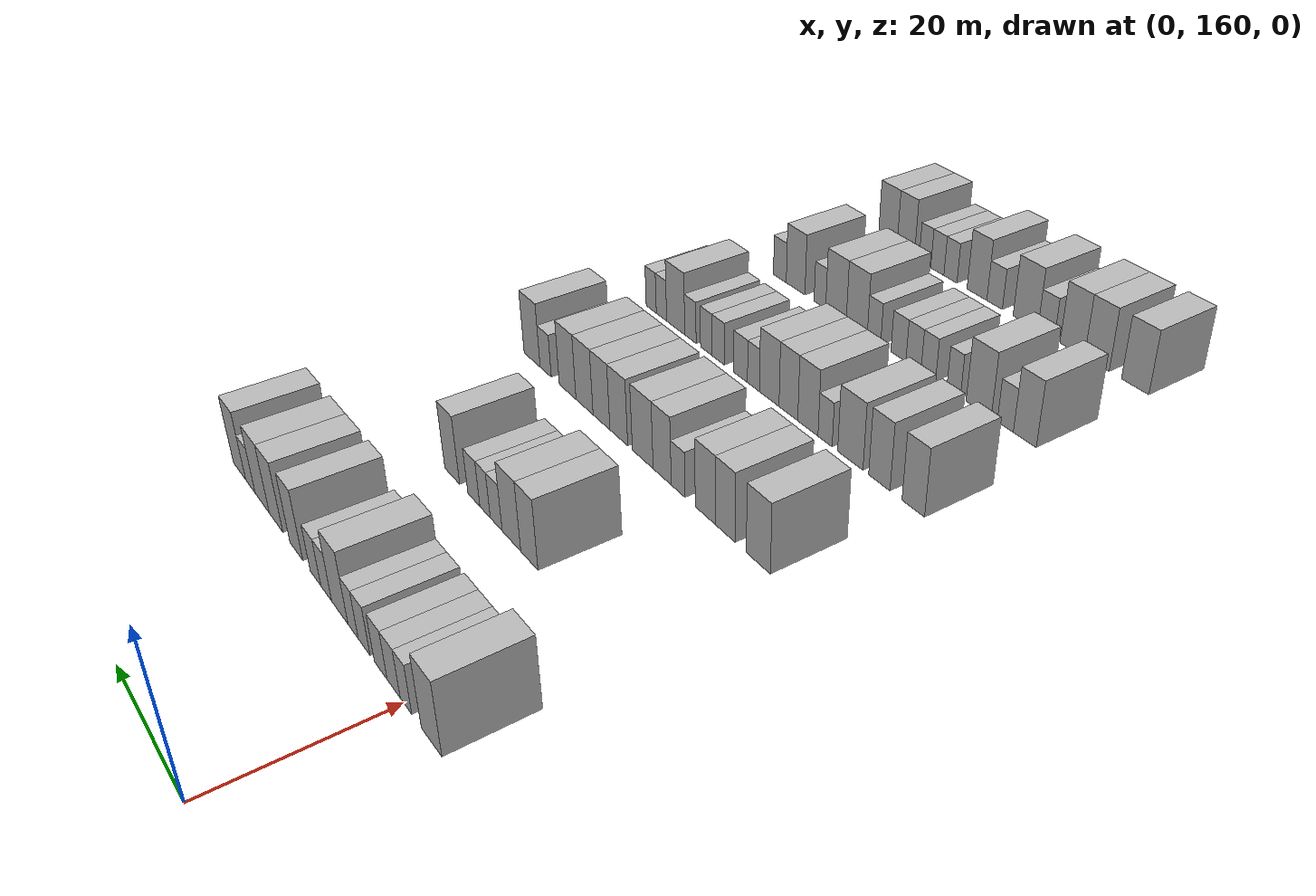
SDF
<sdf version="1.6">
 <world name="default">
  <model name="building_115">
   <static>1</static>
   <pose>25.0000 154.2615 0 0.000000 0.000000 0.000000</pose>
   <link name="link">
    <pose>0 0 4.50 0 0 0</pose>
    <collision name="collision"><geometry><box><size>10.0000 4.1730 9.0000</size></box></geometry></collision>
    <visual name="visual">
     <cast_shadows>0</cast_shadows>
     <geometry><box><size>10.0000 4.1730 9.0000</size></box></geometry>
     <material>
      <script>
       <uri>model://HANNAS_wall/materials/scripts</uri>
       <uri>model://HANNAS_wall/materials/textures</uri>
       <name>vrc/HANNAS_wall</name>
      </script>
     </material>
    </visual>
   </link>
  </model>
  <model name="building_116">
   <static>1</static>
   <pose>25.0000 159.5813 0 0.000000 0.000000 0.000000</pose>
   <link name="link">
    <pose>0 0 3.00 0 0 0</pose>
    <collision name="collision"><geometry><box><size>10.0000 2.4665 6.0000</size></box></geometry></collision>
    <visual name="visual">
     <cast_shadows>0</cast_shadows>
     <geometry><box><size>10.0000 2.4665 6.0000</size></box></geometry>
     <material>
      <script>
       <uri>model://HANNAS_wall/materials/scripts</uri>
       <uri>model://HANNAS_wall/materials/textures</uri>
       <name>vrc/HANNAS_wall</name>
      </script>
     </material>
    </visual>
   </link>
  </model>
  <model name="building_117">
   <static>1</static>
   <pose>25.0000 162.2528 0 0.000000 0.000000 0.000000</pose>
   <link name="link">
    <pose>0 0 3.00 0 0 0</pose>
    <collision name="collision"><geometry><box><size>10.0000 2.8765 6.0000</size></box></geometry></collision>
    <visual name="visual">
     <cast_shadows>0</cast_shadows>
     <geometry><box><size>10.0000 2.8765 6.0000</size></box></geometry>
     <material>
      <script>
       <uri>model://HANNAS_wall/materials/scripts</uri>
       <uri>model://HANNAS_wall/materials/textures</uri>
       <name>vrc/HANNAS_wall</name>
      </script>
     </material>
    </visual>
   </link>
  </model>
  <model name="building_118">
   <static>1</static>
   <pose>25.0000 165.1430 0 0.000000 0.000000 0.000000</pose>
   <link name="link">
    <pose>0 0 3.00 0 0 0</pose>
    <collision name="collision"><geometry><box><size>10.0000 2.9038 6.0000</size></box></geometry></collision>
    <visual name="visual">
     <cast_shadows>0</cast_shadows>
     <geometry><box><size>10.0000 2.9038 6.0000</size></box></geometry>
     <material>
      <script>
       <uri>model://HANNAS_wall/materials/scripts</uri>
       <uri>model://HANNAS_wall/materials/textures</uri>
       <name>vrc/HANNAS_wall</name>
      </script>
     </material>
    </visual>
   </link>
  </model>
  <model name="building_119">
   <static>1</static>
   <pose>25.0000 168.9858 0 0.000000 0.000000 0.000000</pose>
   <link name="link">
    <pose>0 0 3.00 0 0 0</pose>
    <collision name="collision"><geometry><box><size>10.0000 2.7819 6.0000</size></box></geometry></collision>
    <visual name="visual">
     <cast_shadows>0</cast_shadows>
     <geometry><box><size>10.0000 2.7819 6.0000</size></box></geometry>
     <material>
      <script>
       <uri>model://HANNAS_wall/materials/scripts</uri>
       <uri>model://HANNAS_wall/materials/textures</uri>
       <name>vrc/HANNAS_wall</name>
      </script>
     </material>
    </visual>
   </link>
  </model>
  <model name="building_120">
   <static>1</static>
   <pose>25.0000 171.6178 0 0.000000 0.000000 0.000000</pose>
   <link name="link">
    <pose>0 0 3.00 0 0 0</pose>
    <collision name="collision"><geometry><box><size>10.0000 2.4819 6.0000</size></box></geometry></collision>
    <visual name="visual">
     <cast_shadows>0</cast_shadows>
     <geometry><box><size>10.0000 2.4819 6.0000</size></box></geometry>
     <material>
      <script>
       <uri>model://HANNAS_wall/materials/scripts</uri>
       <uri>model://HANNAS_wall/materials/textures</uri>
       <name>vrc/HANNAS_wall</name>
      </script>
     </material>
    </visual>
   </link>
  </model>
  <model name="building_121">
   <static>1</static>
   <pose>25.0000 174.8895 0 0.000000 0.000000 0.000000</pose>
   <link name="link">
    <pose>0 0 4.50 0 0 0</pose>
    <collision name="collision"><geometry><box><size>10.0000 4.0616 9.0000</size></box></geometry></collision>
    <visual name="visual">
     <cast_shadows>0</cast_shadows>
     <geometry><box><size>10.0000 4.0616 9.0000</size></box></geometry>
     <material>
      <script>
       <uri>model://HANNAS_wall/materials/scripts</uri>
       <uri>model://HANNAS_wall/materials/textures</uri>
       <name>vrc/HANNAS_wall</name>
      </script>
     </material>
    </visual>
   </link>
  </model>
  <model name="building_122">
   <static>1</static>
   <pose>25.0000 178.3110 0 0.000000 0.000000 0.000000</pose>
   <link name="link">
    <pose>0 0 3.00 0 0 0</pose>
    <collision name="collision"><geometry><box><size>10.0000 2.7813 6.0000</size></box></geometry></collision>
    <visual name="visual">
     <cast_shadows>0</cast_shadows>
     <geometry><box><size>10.0000 2.7813 6.0000</size></box></geometry>
     <material>
      <script>
       <uri>model://HANNAS_wall/materials/scripts</uri>
       <uri>model://HANNAS_wall/materials/textures</uri>
       <name>vrc/HANNAS_wall</name>
      </script>
     </material>
    </visual>
   </link>
  </model>
  <model name="building_123">
   <static>1</static>
   <pose>25.0000 181.1276 0 0.000000 0.000000 0.000000</pose>
   <link name="link">
    <pose>0 0 3.00 0 0 0</pose>
    <collision name="collision"><geometry><box><size>10.0000 2.8518 6.0000</size></box></geometry></collision>
    <visual name="visual">
     <cast_shadows>0</cast_shadows>
     <geometry><box><size>10.0000 2.8518 6.0000</size></box></geometry>
     <material>
      <script>
       <uri>model://HANNAS_wall/materials/scripts</uri>
       <uri>model://HANNAS_wall/materials/textures</uri>
       <name>vrc/HANNAS_wall</name>
      </script>
     </material>
    </visual>
   </link>
  </model>
  <model name="building_124">
   <static>1</static>
   <pose>25.0000 186.3537 0 0.000000 0.000000 0.000000</pose>
   <link name="link">
    <pose>0 0 4.50 0 0 0</pose>
    <collision name="collision"><geometry><box><size>10.0000 3.6004 9.0000</size></box></geometry></collision>
    <visual name="visual">
     <cast_shadows>0</cast_shadows>
     <geometry><box><size>10.0000 3.6004 9.0000</size></box></geometry>
     <material>
      <script>
       <uri>model://HANNAS_wall/materials/scripts</uri>
       <uri>model://HANNAS_wall/materials/textures</uri>
       <name>vrc/HANNAS_wall</name>
      </script>
     </material>
    </visual>
   </link>
  </model>
  <model name="building_125">
   <static>1</static>
   <pose>25.0000 192.1486 0 0.000000 0.000000 0.000000</pose>
   <link name="link">
    <pose>0 0 4.50 0 0 0</pose>
    <collision name="collision"><geometry><box><size>10.0000 3.9894 9.0000</size></box></geometry></collision>
    <visual name="visual">
     <cast_shadows>0</cast_shadows>
     <geometry><box><size>10.0000 3.9894 9.0000</size></box></geometry>
     <material>
      <script>
       <uri>model://HANNAS_wall/materials/scripts</uri>
       <uri>model://HANNAS_wall/materials/textures</uri>
       <name>vrc/HANNAS_wall</name>
      </script>
     </material>
    </visual>
   </link>
  </model>
  <model name="building_126">
   <static>1</static>
   <pose>25.0000 196.2836 0 0.000000 0.000000 0.000000</pose>
   <link name="link">
    <pose>0 0 4.50 0 0 0</pose>
    <collision name="collision"><geometry><box><size>10.0000 4.2806 9.0000</size></box></geometry></collision>
    <visual name="visual">
     <cast_shadows>0</cast_shadows>
     <geometry><box><size>10.0000 4.2806 9.0000</size></box></geometry>
     <material>
      <script>
       <uri>model://HANNAS_wall/materials/scripts</uri>
       <uri>model://HANNAS_wall/materials/textures</uri>
       <name>vrc/HANNAS_wall</name>
      </script>
     </material>
    </visual>
   </link>
  </model>
  <model name="building_127">
   <static>1</static>
   <pose>25.0000 199.9079 0 0.000000 0.000000 0.000000</pose>
   <link name="link">
    <pose>0 0 3.00 0 0 0</pose>
    <collision name="collision"><geometry><box><size>10.0000 2.9679 6.0000</size></box></geometry></collision>
    <visual name="visual">
     <cast_shadows>0</cast_shadows>
     <geometry><box><size>10.0000 2.9679 6.0000</size></box></geometry>
     <material>
      <script>
       <uri>model://HANNAS_wall/materials/scripts</uri>
       <uri>model://HANNAS_wall/materials/textures</uri>
       <name>vrc/HANNAS_wall</name>
      </script>
     </material>
    </visual>
   </link>
  </model>
  <model name="building_128">
   <static>1</static>
   <pose>25.0000 203.3859 0 0.000000 0.000000 0.000000</pose>
   <link name="link">
    <pose>0 0 4.50 0 0 0</pose>
    <collision name="collision"><geometry><box><size>10.0000 3.9879 9.0000</size></box></geometry></collision>
    <visual name="visual">
     <cast_shadows>0</cast_shadows>
     <geometry><box><size>10.0000 3.9879 9.0000</size></box></geometry>
     <material>
      <script>
       <uri>model://HANNAS_wall/materials/scripts</uri>
       <uri>model://HANNAS_wall/materials/textures</uri>
       <name>vrc/HANNAS_wall</name>
      </script>
     </material>
    </visual>
   </link>
  </model>
  <model name="building_292">
   <static>1</static>
   <pose>44.0000 171.2096 0 0.000000 0.000000 0.000000</pose>
   <link name="link">
    <pose>0 0 4.50 0 0 0</pose>
    <collision name="collision"><geometry><box><size>10.0000 3.6620 9.0000</size></box></geometry></collision>
    <visual name="visual">
     <cast_shadows>0</cast_shadows>
     <geometry><box><size>10.0000 3.6620 9.0000</size></box></geometry>
     <material>
      <script>
       <uri>model://HANNAS_wall/materials/scripts</uri>
       <uri>model://HANNAS_wall/materials/textures</uri>
       <name>vrc/HANNAS_wall</name>
      </script>
     </material>
    </visual>
   </link>
  </model>
  <model name="building_293">
   <static>1</static>
   <pose>44.0000 175.0871 0 0.000000 0.000000 0.000000</pose>
   <link name="link">
    <pose>0 0 4.50 0 0 0</pose>
    <collision name="collision"><geometry><box><size>10.0000 4.0931 9.0000</size></box></geometry></collision>
    <visual name="visual">
     <cast_shadows>0</cast_shadows>
     <geometry><box><size>10.0000 4.0931 9.0000</size></box></geometry>
     <material>
      <script>
       <uri>model://HANNAS_wall/materials/scripts</uri>
       <uri>model://HANNAS_wall/materials/textures</uri>
       <name>vrc/HANNAS_wall</name>
      </script>
     </material>
    </visual>
   </link>
  </model>
  <model name="building_294">
   <static>1</static>
   <pose>44.0000 178.4927 0 0.000000 0.000000 0.000000</pose>
   <link name="link">
    <pose>0 0 3.00 0 0 0</pose>
    <collision name="collision"><geometry><box><size>10.0000 2.7181 6.0000</size></box></geometry></collision>
    <visual name="visual">
     <cast_shadows>0</cast_shadows>
     <geometry><box><size>10.0000 2.7181 6.0000</size></box></geometry>
     <material>
      <script>
       <uri>model://HANNAS_wall/materials/scripts</uri>
       <uri>model://HANNAS_wall/materials/textures</uri>
       <name>vrc/HANNAS_wall</name>
      </script>
     </material>
    </visual>
   </link>
  </model>
  <model name="building_295">
   <static>1</static>
   <pose>44.0000 181.0611 0 0.000000 0.000000 0.000000</pose>
   <link name="link">
    <pose>0 0 3.00 0 0 0</pose>
    <collision name="collision"><geometry><box><size>10.0000 2.4188 6.0000</size></box></geometry></collision>
    <visual name="visual">
     <cast_shadows>0</cast_shadows>
     <geometry><box><size>10.0000 2.4188 6.0000</size></box></geometry>
     <material>
      <script>
       <uri>model://HANNAS_wall/materials/scripts</uri>
       <uri>model://HANNAS_wall/materials/textures</uri>
       <name>vrc/HANNAS_wall</name>
      </script>
     </material>
    </visual>
   </link>
  </model>
  <model name="building_296">
   <static>1</static>
   <pose>44.0000 183.7032 0 0.000000 0.000000 0.000000</pose>
   <link name="link">
    <pose>0 0 3.00 0 0 0</pose>
    <collision name="collision"><geometry><box><size>10.0000 2.8652 6.0000</size></box></geometry></collision>
    <visual name="visual">
     <cast_shadows>0</cast_shadows>
     <geometry><box><size>10.0000 2.8652 6.0000</size></box></geometry>
     <material>
      <script>
       <uri>model://HANNAS_wall/materials/scripts</uri>
       <uri>model://HANNAS_wall/materials/textures</uri>
       <name>vrc/HANNAS_wall</name>
      </script>
     </material>
    </visual>
   </link>
  </model>
  <model name="building_297">
   <static>1</static>
   <pose>44.0000 188.9708 0 0.000000 0.000000 0.000000</pose>
   <link name="link">
    <pose>0 0 4.50 0 0 0</pose>
    <collision name="collision"><geometry><box><size>10.0000 3.6700 9.0000</size></box></geometry></collision>
    <visual name="visual">
     <cast_shadows>0</cast_shadows>
     <geometry><box><size>10.0000 3.6700 9.0000</size></box></geometry>
     <material>
      <script>
       <uri>model://HANNAS_wall/materials/scripts</uri>
       <uri>model://HANNAS_wall/materials/textures</uri>
       <name>vrc/HANNAS_wall</name>
      </script>
     </material>
    </visual>
   </link>
  </model>
  <model name="building_445">
   <static>1</static>
   <pose>63.0000 157.4556 0 0.000000 0.000000 0.000000</pose>
   <link name="link">
    <pose>0 0 4.50 0 0 0</pose>
    <collision name="collision"><geometry><box><size>10.0000 4.1712 9.0000</size></box></geometry></collision>
    <visual name="visual">
     <cast_shadows>0</cast_shadows>
     <geometry><box><size>10.0000 4.1712 9.0000</size></box></geometry>
     <material>
      <script>
       <uri>model://HANNAS_wall/materials/scripts</uri>
       <uri>model://HANNAS_wall/materials/textures</uri>
       <name>vrc/HANNAS_wall</name>
      </script>
     </material>
    </visual>
   </link>
  </model>
  <model name="building_446">
   <static>1</static>
   <pose>63.0000 163.3491 0 0.000000 0.000000 0.000000</pose>
   <link name="link">
    <pose>0 0 4.50 0 0 0</pose>
    <collision name="collision"><geometry><box><size>10.0000 3.6158 9.0000</size></box></geometry></collision>
    <visual name="visual">
     <cast_shadows>0</cast_shadows>
     <geometry><box><size>10.0000 3.6158 9.0000</size></box></geometry>
     <material>
      <script>
       <uri>model://HANNAS_wall/materials/scripts</uri>
       <uri>model://HANNAS_wall/materials/textures</uri>
       <name>vrc/HANNAS_wall</name>
      </script>
     </material>
    </visual>
   </link>
  </model>
  <model name="building_447">
   <static>1</static>
   <pose>63.0000 167.0513 0 0.000000 0.000000 0.000000</pose>
   <link name="link">
    <pose>0 0 4.50 0 0 0</pose>
    <collision name="collision"><geometry><box><size>10.0000 3.7886 9.0000</size></box></geometry></collision>
    <visual name="visual">
     <cast_shadows>0</cast_shadows>
     <geometry><box><size>10.0000 3.7886 9.0000</size></box></geometry>
     <material>
      <script>
       <uri>model://HANNAS_wall/materials/scripts</uri>
       <uri>model://HANNAS_wall/materials/textures</uri>
       <name>vrc/HANNAS_wall</name>
      </script>
     </material>
    </visual>
   </link>
  </model>
  <model name="building_448">
   <static>1</static>
   <pose>63.0000 172.3037 0 0.000000 0.000000 0.000000</pose>
   <link name="link">
    <pose>0 0 3.00 0 0 0</pose>
    <collision name="collision"><geometry><box><size>10.0000 2.7163 6.0000</size></box></geometry></collision>
    <visual name="visual">
     <cast_shadows>0</cast_shadows>
     <geometry><box><size>10.0000 2.7163 6.0000</size></box></geometry>
     <material>
      <script>
       <uri>model://HANNAS_wall/materials/scripts</uri>
       <uri>model://HANNAS_wall/materials/textures</uri>
       <name>vrc/HANNAS_wall</name>
      </script>
     </material>
    </visual>
   </link>
  </model>
  <model name="building_449">
   <static>1</static>
   <pose>63.0000 175.5100 0 0.000000 0.000000 0.000000</pose>
   <link name="link">
    <pose>0 0 4.50 0 0 0</pose>
    <collision name="collision"><geometry><box><size>10.0000 3.6963 9.0000</size></box></geometry></collision>
    <visual name="visual">
     <cast_shadows>0</cast_shadows>
     <geometry><box><size>10.0000 3.6963 9.0000</size></box></geometry>
     <material>
      <script>
       <uri>model://HANNAS_wall/materials/scripts</uri>
       <uri>model://HANNAS_wall/materials/textures</uri>
       <name>vrc/HANNAS_wall</name>
      </script>
     </material>
    </visual>
   </link>
  </model>
  <model name="building_450">
   <static>1</static>
   <pose>63.0000 179.5458 0 0.000000 0.000000 0.000000</pose>
   <link name="link">
    <pose>0 0 4.50 0 0 0</pose>
    <collision name="collision"><geometry><box><size>10.0000 4.3752 9.0000</size></box></geometry></collision>
    <visual name="visual">
     <cast_shadows>0</cast_shadows>
     <geometry><box><size>10.0000 4.3752 9.0000</size></box></geometry>
     <material>
      <script>
       <uri>model://HANNAS_wall/materials/scripts</uri>
       <uri>model://HANNAS_wall/materials/textures</uri>
       <name>vrc/HANNAS_wall</name>
      </script>
     </material>
    </visual>
   </link>
  </model>
  <model name="building_451">
   <static>1</static>
   <pose>63.0000 184.6898 0 0.000000 0.000000 0.000000</pose>
   <link name="link">
    <pose>0 0 4.50 0 0 0</pose>
    <collision name="collision"><geometry><box><size>10.0000 3.9129 9.0000</size></box></geometry></collision>
    <visual name="visual">
     <cast_shadows>0</cast_shadows>
     <geometry><box><size>10.0000 3.9129 9.0000</size></box></geometry>
     <material>
      <script>
       <uri>model://HANNAS_wall/materials/scripts</uri>
       <uri>model://HANNAS_wall/materials/textures</uri>
       <name>vrc/HANNAS_wall</name>
      </script>
     </material>
    </visual>
   </link>
  </model>
  <model name="building_452">
   <static>1</static>
   <pose>63.0000 188.5596 0 0.000000 0.000000 0.000000</pose>
   <link name="link">
    <pose>0 0 4.50 0 0 0</pose>
    <collision name="collision"><geometry><box><size>10.0000 3.8265 9.0000</size></box></geometry></collision>
    <visual name="visual">
     <cast_shadows>0</cast_shadows>
     <geometry><box><size>10.0000 3.8265 9.0000</size></box></geometry>
     <material>
      <script>
       <uri>model://HANNAS_wall/materials/scripts</uri>
       <uri>model://HANNAS_wall/materials/textures</uri>
       <name>vrc/HANNAS_wall</name>
      </script>
     </material>
    </visual>
   </link>
  </model>
  <model name="building_453">
   <static>1</static>
   <pose>63.0000 192.4776 0 0.000000 0.000000 0.000000</pose>
   <link name="link">
    <pose>0 0 4.50 0 0 0</pose>
    <collision name="collision"><geometry><box><size>10.0000 4.0095 9.0000</size></box></geometry></collision>
    <visual name="visual">
     <cast_shadows>0</cast_shadows>
     <geometry><box><size>10.0000 4.0095 9.0000</size></box></geometry>
     <material>
      <script>
       <uri>model://HANNAS_wall/materials/scripts</uri>
       <uri>model://HANNAS_wall/materials/textures</uri>
       <name>vrc/HANNAS_wall</name>
      </script>
     </material>
    </visual>
   </link>
  </model>
  <model name="building_454">
   <static>1</static>
   <pose>63.0000 196.4924 0 0.000000 0.000000 0.000000</pose>
   <link name="link">
    <pose>0 0 4.50 0 0 0</pose>
    <collision name="collision"><geometry><box><size>10.0000 4.0201 9.0000</size></box></geometry></collision>
    <visual name="visual">
     <cast_shadows>0</cast_shadows>
     <geometry><box><size>10.0000 4.0201 9.0000</size></box></geometry>
     <material>
      <script>
       <uri>model://HANNAS_wall/materials/scripts</uri>
       <uri>model://HANNAS_wall/materials/textures</uri>
       <name>vrc/HANNAS_wall</name>
      </script>
     </material>
    </visual>
   </link>
  </model>
  <model name="building_455">
   <static>1</static>
   <pose>63.0000 201.9029 0 0.000000 0.000000 0.000000</pose>
   <link name="link">
    <pose>0 0 3.00 0 0 0</pose>
    <collision name="collision"><geometry><box><size>10.0000 2.8008 6.0000</size></box></geometry></collision>
    <visual name="visual">
     <cast_shadows>0</cast_shadows>
     <geometry><box><size>10.0000 2.8008 6.0000</size></box></geometry>
     <material>
      <script>
       <uri>model://HANNAS_wall/materials/scripts</uri>
       <uri>model://HANNAS_wall/materials/textures</uri>
       <name>vrc/HANNAS_wall</name>
      </script>
     </material>
    </visual>
   </link>
  </model>
  <model name="building_456">
   <static>1</static>
   <pose>63.0000 205.3675 0 0.000000 0.000000 0.000000</pose>
   <link name="link">
    <pose>0 0 4.50 0 0 0</pose>
    <collision name="collision"><geometry><box><size>10.0000 4.1286 9.0000</size></box></geometry></collision>
    <visual name="visual">
     <cast_shadows>0</cast_shadows>
     <geometry><box><size>10.0000 4.1286 9.0000</size></box></geometry>
     <material>
      <script>
       <uri>model://HANNAS_wall/materials/scripts</uri>
       <uri>model://HANNAS_wall/materials/textures</uri>
       <name>vrc/HANNAS_wall</name>
      </script>
     </material>
    </visual>
   </link>
  </model>
  <model name="building_623">
   <static>1</static>
   <pose>82.0000 155.2384 0 0.000000 0.000000 0.000000</pose>
   <link name="link">
    <pose>0 0 4.50 0 0 0</pose>
    <collision name="collision"><geometry><box><size>10.0000 3.6609 9.0000</size></box></geometry></collision>
    <visual name="visual">
     <cast_shadows>0</cast_shadows>
     <geometry><box><size>10.0000 3.6609 9.0000</size></box></geometry>
     <material>
      <script>
       <uri>model://HANNAS_wall/materials/scripts</uri>
       <uri>model://HANNAS_wall/materials/textures</uri>
       <name>vrc/HANNAS_wall</name>
      </script>
     </material>
    </visual>
   </link>
  </model>
  <model name="building_624">
   <static>1</static>
   <pose>82.0000 160.8846 0 0.000000 0.000000 0.000000</pose>
   <link name="link">
    <pose>0 0 4.50 0 0 0</pose>
    <collision name="collision"><geometry><box><size>10.0000 3.6316 9.0000</size></box></geometry></collision>
    <visual name="visual">
     <cast_shadows>0</cast_shadows>
     <geometry><box><size>10.0000 3.6316 9.0000</size></box></geometry>
     <material>
      <script>
       <uri>model://HANNAS_wall/materials/scripts</uri>
       <uri>model://HANNAS_wall/materials/textures</uri>
       <name>vrc/HANNAS_wall</name>
      </script>
     </material>
    </visual>
   </link>
  </model>
  <model name="building_625">
   <static>1</static>
   <pose>82.0000 165.9475 0 0.000000 0.000000 0.000000</pose>
   <link name="link">
    <pose>0 0 4.50 0 0 0</pose>
    <collision name="collision"><geometry><box><size>10.0000 4.4942 9.0000</size></box></geometry></collision>
    <visual name="visual">
     <cast_shadows>0</cast_shadows>
     <geometry><box><size>10.0000 4.4942 9.0000</size></box></geometry>
     <material>
      <script>
       <uri>model://HANNAS_wall/materials/scripts</uri>
       <uri>model://HANNAS_wall/materials/textures</uri>
       <name>vrc/HANNAS_wall</name>
      </script>
     </material>
    </visual>
   </link>
  </model>
  <model name="building_626">
   <static>1</static>
   <pose>82.0000 170.5003 0 0.000000 0.000000 0.000000</pose>
   <link name="link">
    <pose>0 0 3.00 0 0 0</pose>
    <collision name="collision"><geometry><box><size>10.0000 2.6113 6.0000</size></box></geometry></collision>
    <visual name="visual">
     <cast_shadows>0</cast_shadows>
     <geometry><box><size>10.0000 2.6113 6.0000</size></box></geometry>
     <material>
      <script>
       <uri>model://HANNAS_wall/materials/scripts</uri>
       <uri>model://HANNAS_wall/materials/textures</uri>
       <name>vrc/HANNAS_wall</name>
      </script>
     </material>
    </visual>
   </link>
  </model>
  <model name="building_627">
   <static>1</static>
   <pose>82.0000 173.7292 0 0.000000 0.000000 0.000000</pose>
   <link name="link">
    <pose>0 0 4.50 0 0 0</pose>
    <collision name="collision"><geometry><box><size>10.0000 3.8465 9.0000</size></box></geometry></collision>
    <visual name="visual">
     <cast_shadows>0</cast_shadows>
     <geometry><box><size>10.0000 3.8465 9.0000</size></box></geometry>
     <material>
      <script>
       <uri>model://HANNAS_wall/materials/scripts</uri>
       <uri>model://HANNAS_wall/materials/textures</uri>
       <name>vrc/HANNAS_wall</name>
      </script>
     </material>
    </visual>
   </link>
  </model>
  <model name="building_628">
   <static>1</static>
   <pose>82.0000 177.4839 0 0.000000 0.000000 0.000000</pose>
   <link name="link">
    <pose>0 0 4.50 0 0 0</pose>
    <collision name="collision"><geometry><box><size>10.0000 3.6628 9.0000</size></box></geometry></collision>
    <visual name="visual">
     <cast_shadows>0</cast_shadows>
     <geometry><box><size>10.0000 3.6628 9.0000</size></box></geometry>
     <material>
      <script>
       <uri>model://HANNAS_wall/materials/scripts</uri>
       <uri>model://HANNAS_wall/materials/textures</uri>
       <name>vrc/HANNAS_wall</name>
      </script>
     </material>
    </visual>
   </link>
  </model>
  <model name="building_629">
   <static>1</static>
   <pose>82.0000 181.2828 0 0.000000 0.000000 0.000000</pose>
   <link name="link">
    <pose>0 0 4.50 0 0 0</pose>
    <collision name="collision"><geometry><box><size>10.0000 3.9350 9.0000</size></box></geometry></collision>
    <visual name="visual">
     <cast_shadows>0</cast_shadows>
     <geometry><box><size>10.0000 3.9350 9.0000</size></box></geometry>
     <material>
      <script>
       <uri>model://HANNAS_wall/materials/scripts</uri>
       <uri>model://HANNAS_wall/materials/textures</uri>
       <name>vrc/HANNAS_wall</name>
      </script>
     </material>
    </visual>
   </link>
  </model>
  <model name="building_630">
   <static>1</static>
   <pose>82.0000 184.4902 0 0.000000 0.000000 0.000000</pose>
   <link name="link">
    <pose>0 0 3.00 0 0 0</pose>
    <collision name="collision"><geometry><box><size>10.0000 2.4799 6.0000</size></box></geometry></collision>
    <visual name="visual">
     <cast_shadows>0</cast_shadows>
     <geometry><box><size>10.0000 2.4799 6.0000</size></box></geometry>
     <material>
      <script>
       <uri>model://HANNAS_wall/materials/scripts</uri>
       <uri>model://HANNAS_wall/materials/textures</uri>
       <name>vrc/HANNAS_wall</name>
      </script>
     </material>
    </visual>
   </link>
  </model>
  <model name="building_631">
   <static>1</static>
   <pose>82.0000 187.1847 0 0.000000 0.000000 0.000000</pose>
   <link name="link">
    <pose>0 0 3.00 0 0 0</pose>
    <collision name="collision"><geometry><box><size>10.0000 2.9091 6.0000</size></box></geometry></collision>
    <visual name="visual">
     <cast_shadows>0</cast_shadows>
     <geometry><box><size>10.0000 2.9091 6.0000</size></box></geometry>
     <material>
      <script>
       <uri>model://HANNAS_wall/materials/scripts</uri>
       <uri>model://HANNAS_wall/materials/textures</uri>
       <name>vrc/HANNAS_wall</name>
      </script>
     </material>
    </visual>
   </link>
  </model>
  <model name="building_632">
   <static>1</static>
   <pose>82.0000 192.0101 0 0.000000 0.000000 0.000000</pose>
   <link name="link">
    <pose>0 0 3.00 0 0 0</pose>
    <collision name="collision"><geometry><box><size>10.0000 2.7419 6.0000</size></box></geometry></collision>
    <visual name="visual">
     <cast_shadows>0</cast_shadows>
     <geometry><box><size>10.0000 2.7419 6.0000</size></box></geometry>
     <material>
      <script>
       <uri>model://HANNAS_wall/materials/scripts</uri>
       <uri>model://HANNAS_wall/materials/textures</uri>
       <name>vrc/HANNAS_wall</name>
      </script>
     </material>
    </visual>
   </link>
  </model>
  <model name="building_633">
   <static>1</static>
   <pose>82.0000 194.6394 0 0.000000 0.000000 0.000000</pose>
   <link name="link">
    <pose>0 0 3.00 0 0 0</pose>
    <collision name="collision"><geometry><box><size>10.0000 2.5166 6.0000</size></box></geometry></collision>
    <visual name="visual">
     <cast_shadows>0</cast_shadows>
     <geometry><box><size>10.0000 2.5166 6.0000</size></box></geometry>
     <material>
      <script>
       <uri>model://HANNAS_wall/materials/scripts</uri>
       <uri>model://HANNAS_wall/materials/textures</uri>
       <name>vrc/HANNAS_wall</name>
      </script>
     </material>
    </visual>
   </link>
  </model>
  <model name="building_634">
   <static>1</static>
   <pose>82.0000 198.1976 0 0.000000 0.000000 0.000000</pose>
   <link name="link">
    <pose>0 0 3.00 0 0 0</pose>
    <collision name="collision"><geometry><box><size>10.0000 2.5997 6.0000</size></box></geometry></collision>
    <visual name="visual">
     <cast_shadows>0</cast_shadows>
     <geometry><box><size>10.0000 2.5997 6.0000</size></box></geometry>
     <material>
      <script>
       <uri>model://HANNAS_wall/materials/scripts</uri>
       <uri>model://HANNAS_wall/materials/textures</uri>
       <name>vrc/HANNAS_wall</name>
      </script>
     </material>
    </visual>
   </link>
  </model>
  <model name="building_635">
   <static>1</static>
   <pose>82.0000 201.6266 0 0.000000 0.000000 0.000000</pose>
   <link name="link">
    <pose>0 0 4.50 0 0 0</pose>
    <collision name="collision"><geometry><box><size>10.0000 4.2584 9.0000</size></box></geometry></collision>
    <visual name="visual">
     <cast_shadows>0</cast_shadows>
     <geometry><box><size>10.0000 4.2584 9.0000</size></box></geometry>
     <material>
      <script>
       <uri>model://HANNAS_wall/materials/scripts</uri>
       <uri>model://HANNAS_wall/materials/textures</uri>
       <name>vrc/HANNAS_wall</name>
      </script>
     </material>
    </visual>
   </link>
  </model>
  <model name="building_636">
   <static>1</static>
   <pose>82.0000 205.0024 0 0.000000 0.000000 0.000000</pose>
   <link name="link">
    <pose>0 0 3.00 0 0 0</pose>
    <collision name="collision"><geometry><box><size>10.0000 2.4931 6.0000</size></box></geometry></collision>
    <visual name="visual">
     <cast_shadows>0</cast_shadows>
     <geometry><box><size>10.0000 2.4931 6.0000</size></box></geometry>
     <material>
      <script>
       <uri>model://HANNAS_wall/materials/scripts</uri>
       <uri>model://HANNAS_wall/materials/textures</uri>
       <name>vrc/HANNAS_wall</name>
      </script>
     </material>
    </visual>
   </link>
  </model>
  <model name="building_637">
   <static>1</static>
   <pose>82.0000 207.4839 0 0.000000 0.000000 0.000000</pose>
   <link name="link">
    <pose>0 0 3.00 0 0 0</pose>
    <collision name="collision"><geometry><box><size>10.0000 2.4699 6.0000</size></box></geometry></collision>
    <visual name="visual">
     <cast_shadows>0</cast_shadows>
     <geometry><box><size>10.0000 2.4699 6.0000</size></box></geometry>
     <material>
      <script>
       <uri>model://HANNAS_wall/materials/scripts</uri>
       <uri>model://HANNAS_wall/materials/textures</uri>
       <name>vrc/HANNAS_wall</name>
      </script>
     </material>
    </visual>
   </link>
  </model>
  <model name="building_799">
   <static>1</static>
   <pose>101.0000 157.5948 0 0.000000 0.000000 0.000000</pose>
   <link name="link">
    <pose>0 0 4.50 0 0 0</pose>
    <collision name="collision"><geometry><box><size>10.0000 3.6920 9.0000</size></box></geometry></collision>
    <visual name="visual">
     <cast_shadows>0</cast_shadows>
     <geometry><box><size>10.0000 3.6920 9.0000</size></box></geometry>
     <material>
      <script>
       <uri>model://HANNAS_wall/materials/scripts</uri>
       <uri>model://HANNAS_wall/materials/textures</uri>
       <name>vrc/HANNAS_wall</name>
      </script>
     </material>
    </visual>
   </link>
  </model>
  <model name="building_800">
   <static>1</static>
   <pose>101.0000 160.7679 0 0.000000 0.000000 0.000000</pose>
   <link name="link">
    <pose>0 0 3.00 0 0 0</pose>
    <collision name="collision"><geometry><box><size>10.0000 2.6541 6.0000</size></box></geometry></collision>
    <visual name="visual">
     <cast_shadows>0</cast_shadows>
     <geometry><box><size>10.0000 2.6541 6.0000</size></box></geometry>
     <material>
      <script>
       <uri>model://HANNAS_wall/materials/scripts</uri>
       <uri>model://HANNAS_wall/materials/textures</uri>
       <name>vrc/HANNAS_wall</name>
      </script>
     </material>
    </visual>
   </link>
  </model>
  <model name="building_801">
   <static>1</static>
   <pose>101.0000 165.2416 0 0.000000 0.000000 0.000000</pose>
   <link name="link">
    <pose>0 0 4.50 0 0 0</pose>
    <collision name="collision"><geometry><box><size>10.0000 4.2933 9.0000</size></box></geometry></collision>
    <visual name="visual">
     <cast_shadows>0</cast_shadows>
     <geometry><box><size>10.0000 4.2933 9.0000</size></box></geometry>
     <material>
      <script>
       <uri>model://HANNAS_wall/materials/scripts</uri>
       <uri>model://HANNAS_wall/materials/textures</uri>
       <name>vrc/HANNAS_wall</name>
      </script>
     </material>
    </visual>
   </link>
  </model>
  <model name="building_802">
   <static>1</static>
   <pose>101.0000 169.5949 0 0.000000 0.000000 0.000000</pose>
   <link name="link">
    <pose>0 0 3.00 0 0 0</pose>
    <collision name="collision"><geometry><box><size>10.0000 2.4132 6.0000</size></box></geometry></collision>
    <visual name="visual">
     <cast_shadows>0</cast_shadows>
     <geometry><box><size>10.0000 2.4132 6.0000</size></box></geometry>
     <material>
      <script>
       <uri>model://HANNAS_wall/materials/scripts</uri>
       <uri>model://HANNAS_wall/materials/textures</uri>
       <name>vrc/HANNAS_wall</name>
      </script>
     </material>
    </visual>
   </link>
  </model>
  <model name="building_803">
   <static>1</static>
   <pose>101.0000 174.1433 0 0.000000 0.000000 0.000000</pose>
   <link name="link">
    <pose>0 0 3.00 0 0 0</pose>
    <collision name="collision"><geometry><box><size>10.0000 2.6836 6.0000</size></box></geometry></collision>
    <visual name="visual">
     <cast_shadows>0</cast_shadows>
     <geometry><box><size>10.0000 2.6836 6.0000</size></box></geometry>
     <material>
      <script>
       <uri>model://HANNAS_wall/materials/scripts</uri>
       <uri>model://HANNAS_wall/materials/textures</uri>
       <name>vrc/HANNAS_wall</name>
      </script>
     </material>
    </visual>
   </link>
  </model>
  <model name="building_804">
   <static>1</static>
   <pose>101.0000 176.8945 0 0.000000 0.000000 0.000000</pose>
   <link name="link">
    <pose>0 0 3.00 0 0 0</pose>
    <collision name="collision"><geometry><box><size>10.0000 2.8189 6.0000</size></box></geometry></collision>
    <visual name="visual">
     <cast_shadows>0</cast_shadows>
     <geometry><box><size>10.0000 2.8189 6.0000</size></box></geometry>
     <material>
      <script>
       <uri>model://HANNAS_wall/materials/scripts</uri>
       <uri>model://HANNAS_wall/materials/textures</uri>
       <name>vrc/HANNAS_wall</name>
      </script>
     </material>
    </visual>
   </link>
  </model>
  <model name="building_805">
   <static>1</static>
   <pose>101.0000 179.7383 0 0.000000 0.000000 0.000000</pose>
   <link name="link">
    <pose>0 0 3.00 0 0 0</pose>
    <collision name="collision"><geometry><box><size>10.0000 2.8689 6.0000</size></box></geometry></collision>
    <visual name="visual">
     <cast_shadows>0</cast_shadows>
     <geometry><box><size>10.0000 2.8689 6.0000</size></box></geometry>
     <material>
      <script>
       <uri>model://HANNAS_wall/materials/scripts</uri>
       <uri>model://HANNAS_wall/materials/textures</uri>
       <name>vrc/HANNAS_wall</name>
      </script>
     </material>
    </visual>
   </link>
  </model>
  <model name="building_806">
   <static>1</static>
   <pose>101.0000 184.5046 0 0.000000 0.000000 0.000000</pose>
   <link name="link">
    <pose>0 0 3.00 0 0 0</pose>
    <collision name="collision"><geometry><box><size>10.0000 2.6637 6.0000</size></box></geometry></collision>
    <visual name="visual">
     <cast_shadows>0</cast_shadows>
     <geometry><box><size>10.0000 2.6637 6.0000</size></box></geometry>
     <material>
      <script>
       <uri>model://HANNAS_wall/materials/scripts</uri>
       <uri>model://HANNAS_wall/materials/textures</uri>
       <name>vrc/HANNAS_wall</name>
      </script>
     </material>
    </visual>
   </link>
  </model>
  <model name="building_807">
   <static>1</static>
   <pose>101.0000 187.9706 0 0.000000 0.000000 0.000000</pose>
   <link name="link">
    <pose>0 0 4.50 0 0 0</pose>
    <collision name="collision"><geometry><box><size>10.0000 4.2682 9.0000</size></box></geometry></collision>
    <visual name="visual">
     <cast_shadows>0</cast_shadows>
     <geometry><box><size>10.0000 4.2682 9.0000</size></box></geometry>
     <material>
      <script>
       <uri>model://HANNAS_wall/materials/scripts</uri>
       <uri>model://HANNAS_wall/materials/textures</uri>
       <name>vrc/HANNAS_wall</name>
      </script>
     </material>
    </visual>
   </link>
  </model>
  <model name="building_808">
   <static>1</static>
   <pose>101.0000 192.2582 0 0.000000 0.000000 0.000000</pose>
   <link name="link">
    <pose>0 0 4.50 0 0 0</pose>
    <collision name="collision"><geometry><box><size>10.0000 4.3071 9.0000</size></box></geometry></collision>
    <visual name="visual">
     <cast_shadows>0</cast_shadows>
     <geometry><box><size>10.0000 4.3071 9.0000</size></box></geometry>
     <material>
      <script>
       <uri>model://HANNAS_wall/materials/scripts</uri>
       <uri>model://HANNAS_wall/materials/textures</uri>
       <name>vrc/HANNAS_wall</name>
      </script>
     </material>
    </visual>
   </link>
  </model>
  <model name="building_809">
   <static>1</static>
   <pose>101.0000 195.6526 0 0.000000 0.000000 0.000000</pose>
   <link name="link">
    <pose>0 0 3.00 0 0 0</pose>
    <collision name="collision"><geometry><box><size>10.0000 2.4817 6.0000</size></box></geometry></collision>
    <visual name="visual">
     <cast_shadows>0</cast_shadows>
     <geometry><box><size>10.0000 2.4817 6.0000</size></box></geometry>
     <material>
      <script>
       <uri>model://HANNAS_wall/materials/scripts</uri>
       <uri>model://HANNAS_wall/materials/textures</uri>
       <name>vrc/HANNAS_wall</name>
      </script>
     </material>
    </visual>
   </link>
  </model>
  <model name="building_810">
   <static>1</static>
   <pose>101.0000 200.9760 0 0.000000 0.000000 0.000000</pose>
   <link name="link">
    <pose>0 0 4.50 0 0 0</pose>
    <collision name="collision"><geometry><box><size>10.0000 4.1651 9.0000</size></box></geometry></collision>
    <visual name="visual">
     <cast_shadows>0</cast_shadows>
     <geometry><box><size>10.0000 4.1651 9.0000</size></box></geometry>
     <material>
      <script>
       <uri>model://HANNAS_wall/materials/scripts</uri>
       <uri>model://HANNAS_wall/materials/textures</uri>
       <name>vrc/HANNAS_wall</name>
      </script>
     </material>
    </visual>
   </link>
  </model>
  <model name="building_811">
   <static>1</static>
   <pose>101.0000 204.5155 0 0.000000 0.000000 0.000000</pose>
   <link name="link">
    <pose>0 0 3.00 0 0 0</pose>
    <collision name="collision"><geometry><box><size>10.0000 2.9141 6.0000</size></box></geometry></collision>
    <visual name="visual">
     <cast_shadows>0</cast_shadows>
     <geometry><box><size>10.0000 2.9141 6.0000</size></box></geometry>
     <material>
      <script>
       <uri>model://HANNAS_wall/materials/scripts</uri>
       <uri>model://HANNAS_wall/materials/textures</uri>
       <name>vrc/HANNAS_wall</name>
      </script>
     </material>
    </visual>
   </link>
  </model>
  <model name="building_963">
   <static>1</static>
   <pose>120.0000 157.9830 0 0.000000 0.000000 0.000000</pose>
   <link name="link">
    <pose>0 0 4.50 0 0 0</pose>
    <collision name="collision"><geometry><box><size>10.0000 4.3432 9.0000</size></box></geometry></collision>
    <visual name="visual">
     <cast_shadows>0</cast_shadows>
     <geometry><box><size>10.0000 4.3432 9.0000</size></box></geometry>
     <material>
      <script>
       <uri>model://HANNAS_wall/materials/scripts</uri>
       <uri>model://HANNAS_wall/materials/textures</uri>
       <name>vrc/HANNAS_wall</name>
      </script>
     </material>
    </visual>
   </link>
  </model>
  <model name="building_964">
   <static>1</static>
   <pose>120.0000 164.2002 0 0.000000 0.000000 0.000000</pose>
   <link name="link">
    <pose>0 0 4.50 0 0 0</pose>
    <collision name="collision"><geometry><box><size>10.0000 4.0913 9.0000</size></box></geometry></collision>
    <visual name="visual">
     <cast_shadows>0</cast_shadows>
     <geometry><box><size>10.0000 4.0913 9.0000</size></box></geometry>
     <material>
      <script>
       <uri>model://HANNAS_wall/materials/scripts</uri>
       <uri>model://HANNAS_wall/materials/textures</uri>
       <name>vrc/HANNAS_wall</name>
      </script>
     </material>
    </visual>
   </link>
  </model>
  <model name="building_965">
   <static>1</static>
   <pose>120.0000 168.3433 0 0.000000 0.000000 0.000000</pose>
   <link name="link">
    <pose>0 0 4.50 0 0 0</pose>
    <collision name="collision"><geometry><box><size>10.0000 4.1948 9.0000</size></box></geometry></collision>
    <visual name="visual">
     <cast_shadows>0</cast_shadows>
     <geometry><box><size>10.0000 4.1948 9.0000</size></box></geometry>
     <material>
      <script>
       <uri>model://HANNAS_wall/materials/scripts</uri>
       <uri>model://HANNAS_wall/materials/textures</uri>
       <name>vrc/HANNAS_wall</name>
      </script>
     </material>
    </visual>
   </link>
  </model>
  <model name="building_966">
   <static>1</static>
   <pose>120.0000 172.9044 0 0.000000 0.000000 0.000000</pose>
   <link name="link">
    <pose>0 0 3.00 0 0 0</pose>
    <collision name="collision"><geometry><box><size>10.0000 2.9275 6.0000</size></box></geometry></collision>
    <visual name="visual">
     <cast_shadows>0</cast_shadows>
     <geometry><box><size>10.0000 2.9275 6.0000</size></box></geometry>
     <material>
      <script>
       <uri>model://HANNAS_wall/materials/scripts</uri>
       <uri>model://HANNAS_wall/materials/textures</uri>
       <name>vrc/HANNAS_wall</name>
      </script>
     </material>
    </visual>
   </link>
  </model>
  <model name="building_967">
   <static>1</static>
   <pose>120.0000 176.6064 0 0.000000 0.000000 0.000000</pose>
   <link name="link">
    <pose>0 0 4.50 0 0 0</pose>
    <collision name="collision"><geometry><box><size>10.0000 4.4765 9.0000</size></box></geometry></collision>
    <visual name="visual">
     <cast_shadows>0</cast_shadows>
     <geometry><box><size>10.0000 4.4765 9.0000</size></box></geometry>
     <material>
      <script>
       <uri>model://HANNAS_wall/materials/scripts</uri>
       <uri>model://HANNAS_wall/materials/textures</uri>
       <name>vrc/HANNAS_wall</name>
      </script>
     </material>
    </visual>
   </link>
  </model>
  <model name="building_968">
   <static>1</static>
   <pose>120.0000 182.3183 0 0.000000 0.000000 0.000000</pose>
   <link name="link">
    <pose>0 0 3.00 0 0 0</pose>
    <collision name="collision"><geometry><box><size>10.0000 2.9474 6.0000</size></box></geometry></collision>
    <visual name="visual">
     <cast_shadows>0</cast_shadows>
     <geometry><box><size>10.0000 2.9474 6.0000</size></box></geometry>
     <material>
      <script>
       <uri>model://HANNAS_wall/materials/scripts</uri>
       <uri>model://HANNAS_wall/materials/textures</uri>
       <name>vrc/HANNAS_wall</name>
      </script>
     </material>
    </visual>
   </link>
  </model>
  <model name="building_969">
   <static>1</static>
   <pose>120.0000 185.7115 0 0.000000 0.000000 0.000000</pose>
   <link name="link">
    <pose>0 0 4.50 0 0 0</pose>
    <collision name="collision"><geometry><box><size>10.0000 3.8390 9.0000</size></box></geometry></collision>
    <visual name="visual">
     <cast_shadows>0</cast_shadows>
     <geometry><box><size>10.0000 3.8390 9.0000</size></box></geometry>
     <material>
      <script>
       <uri>model://HANNAS_wall/materials/scripts</uri>
       <uri>model://HANNAS_wall/materials/textures</uri>
       <name>vrc/HANNAS_wall</name>
      </script>
     </material>
    </visual>
   </link>
  </model>
  <model name="building_970">
   <static>1</static>
   <pose>120.0000 190.9447 0 0.000000 0.000000 0.000000</pose>
   <link name="link">
    <pose>0 0 3.00 0 0 0</pose>
    <collision name="collision"><geometry><box><size>10.0000 2.6273 6.0000</size></box></geometry></collision>
    <visual name="visual">
     <cast_shadows>0</cast_shadows>
     <geometry><box><size>10.0000 2.6273 6.0000</size></box></geometry>
     <material>
      <script>
       <uri>model://HANNAS_wall/materials/scripts</uri>
       <uri>model://HANNAS_wall/materials/textures</uri>
       <name>vrc/HANNAS_wall</name>
      </script>
     </material>
    </visual>
   </link>
  </model>
  <model name="building_971">
   <static>1</static>
   <pose>120.0000 193.6059 0 0.000000 0.000000 0.000000</pose>
   <link name="link">
    <pose>0 0 3.00 0 0 0</pose>
    <collision name="collision"><geometry><box><size>10.0000 2.6952 6.0000</size></box></geometry></collision>
    <visual name="visual">
     <cast_shadows>0</cast_shadows>
     <geometry><box><size>10.0000 2.6952 6.0000</size></box></geometry>
     <material>
      <script>
       <uri>model://HANNAS_wall/materials/scripts</uri>
       <uri>model://HANNAS_wall/materials/textures</uri>
       <name>vrc/HANNAS_wall</name>
      </script>
     </material>
    </visual>
   </link>
  </model>
  <model name="building_972">
   <static>1</static>
   <pose>120.0000 196.1742 0 0.000000 0.000000 0.000000</pose>
   <link name="link">
    <pose>0 0 3.00 0 0 0</pose>
    <collision name="collision"><geometry><box><size>10.0000 2.4413 6.0000</size></box></geometry></collision>
    <visual name="visual">
     <cast_shadows>0</cast_shadows>
     <geometry><box><size>10.0000 2.4413 6.0000</size></box></geometry>
     <material>
      <script>
       <uri>model://HANNAS_wall/materials/scripts</uri>
       <uri>model://HANNAS_wall/materials/textures</uri>
       <name>vrc/HANNAS_wall</name>
      </script>
     </material>
    </visual>
   </link>
  </model>
  <model name="building_973">
   <static>1</static>
   <pose>120.0000 200.2572 0 0.000000 0.000000 0.000000</pose>
   <link name="link">
    <pose>0 0 4.50 0 0 0</pose>
    <collision name="collision"><geometry><box><size>10.0000 3.7246 9.0000</size></box></geometry></collision>
    <visual name="visual">
     <cast_shadows>0</cast_shadows>
     <geometry><box><size>10.0000 3.7246 9.0000</size></box></geometry>
     <material>
      <script>
       <uri>model://HANNAS_wall/materials/scripts</uri>
       <uri>model://HANNAS_wall/materials/textures</uri>
       <name>vrc/HANNAS_wall</name>
      </script>
     </material>
    </visual>
   </link>
  </model>
  <model name="building_974">
   <static>1</static>
   <pose>120.0000 204.1513 0 0.000000 0.000000 0.000000</pose>
   <link name="link">
    <pose>0 0 4.50 0 0 0</pose>
    <collision name="collision"><geometry><box><size>10.0000 4.0636 9.0000</size></box></geometry></collision>
    <visual name="visual">
     <cast_shadows>0</cast_shadows>
     <geometry><box><size>10.0000 4.0636 9.0000</size></box></geometry>
     <material>
      <script>
       <uri>model://HANNAS_wall/materials/scripts</uri>
       <uri>model://HANNAS_wall/materials/textures</uri>
       <name>vrc/HANNAS_wall</name>
      </script>
     </material>
    </visual>
   </link>
  </model>
 </world>
</sdf>
